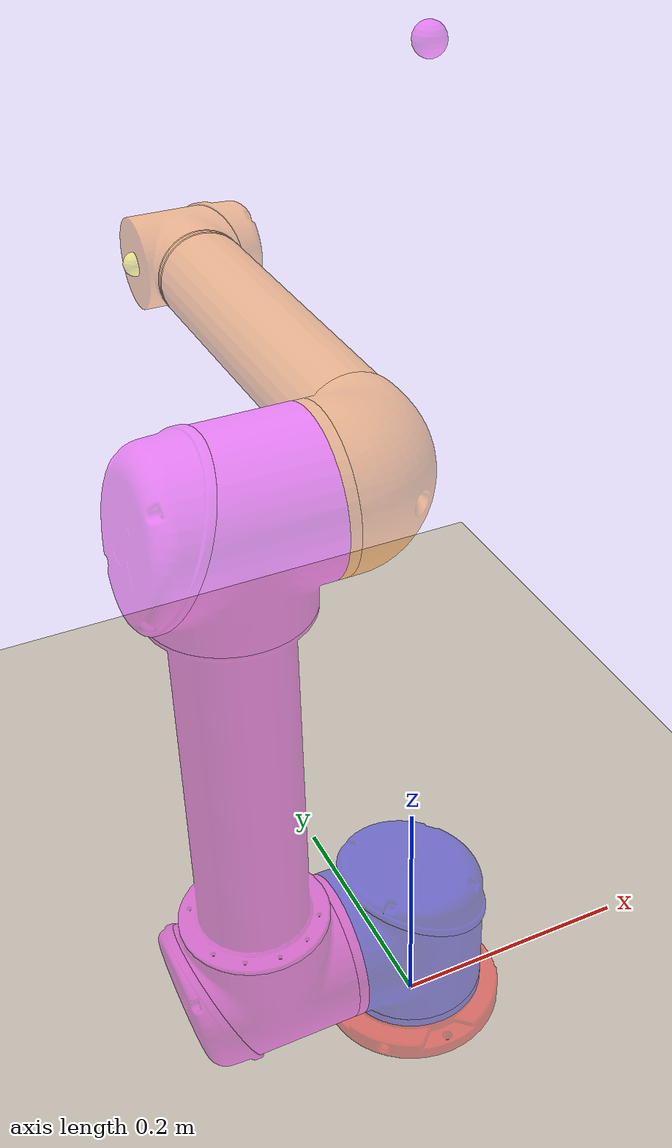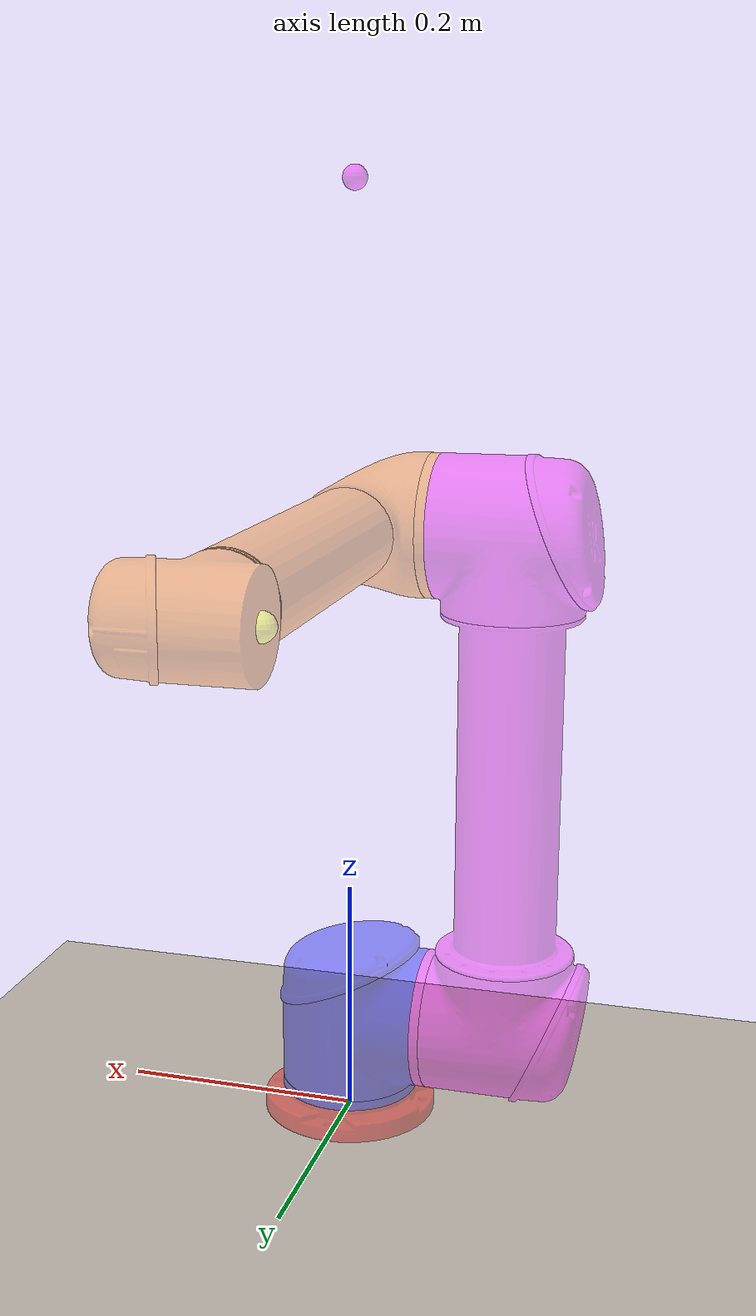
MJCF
<!-- NOTE: the joint limits and references have not been set. If using -->
<!-- this to control a real ur5, make sure they align with the values -->
<!-- used in the real arm firmware -->
<!-- Masses and center-of-masses taken from: www.universal-robots.com/
        how-tos-and-faqs/faq/ur-faq/
        parameters-for-calculations-of-kinematics-and-dynamics-45257/ -->
<!-- Principle moments of inertia not provided, set all to 0.1. -->
<!-- Inertia parameters provided at link below, not sure of accuracy so not used:
        http://hades.mech.northwestern.edu/images/4/49/UR5-URDF.pdf -->
<mujoco model="ur5">
    <compiler angle="radian" meshdir="meshes" balanceinertia="true"/>

    <default>
        <light castshadow="false" diffuse="1 1 1" />
        <camera fovy="60" />
    </default>

    <asset>
        <!-- arm models -->
        <mesh file="link0.stl"/>
        <mesh file="link1.stl"/>
        <mesh file="link1_cap.stl" />
        <mesh file="link1_connector.stl" />
        <mesh file="link2.stl" />
        <mesh file="link2_tube.stl" />
        <mesh file="link2_cap.stl" />
        <mesh file="link2_connector.stl" />
        <mesh file="link3a.stl" />
        <mesh file="link3a_connector.stl" />
        <mesh file="link3_tube.stl" />
        <mesh file="link3_cap.stl" />
        <mesh file="link3b.stl" />
        <mesh file="link3b_connector.stl" />
        <mesh file="link3b_connector2.stl"/>

        <material name="GriMat" specular="0.9" shininess="0.5" reflectance="0" rgba="0.1 0.1 0.1 1" emission="0.1" />

        <texture name="floor_tile" file="meshes/floor_tile.png" width="3000" height="3000" type="2d"/>
        <material name="tile"   texture="floor_tile" specular="0" shininess="0" reflectance="0" emission="1" />

        <material name="silver" specular="1" shininess="0.5" reflectance="1" emission="0.25" rgba="0.82 0.82 0.82 1"/>
        <material name="grey"   specular="1" shininess="0.5" reflectance="1" emission="0.1"  rgba="0.5 0.5 0.5 1"/>
        <material name="blue"   specular="1" shininess="0.5" reflectance="1" emission="0"    rgba="0.678 0.847 0.902 1"/>
        <material name="black"  specular="1" shininess="0.5" reflectance="1" emission="0"    rgba="0.2 0.2 0.2 1"/>

       	<material name="red"  specular="1" shininess="0.5" reflectance="1" emission="0"    rgba="1 0 0 0.4"/>
        <material name="green"  specular="1" shininess="0.5" reflectance="1" emission="0"    rgba="0 0 1 0.4"/>
        <material name="purple"  specular="1" shininess="0.5" reflectance="1" emission="0"    rgba="1 0 1 0.4"/>
        <material name="orange"  specular="1" shininess="0.5" reflectance="1" emission="0"    rgba="1 0.5 0 0.4"/>
        <material name="yellow"  specular="1" shininess="0.5" reflectance="1" emission="0"    rgba="1 1 0 0.4"/>

    </asset>

    <worldbody>
        <geom name="floor_grey_tile" pos="0 0.4 -0.001" size="1.0 1.0 0.05" type="plane" solimp="1 1 0 0.5 2" friction="0.1 0.005 0.0001" material="tile"/>

        <!-- light -->
        <light directional="true" pos="-0.5 0.5 3" dir="0 0 -1" />

        <!-- camera -->
        <camera name="camera1" mode= "fixed" euler="0 1.57 1.57" pos="1.0 0 0.3"/>
        <camera name="camera2" mode= "fixed" euler="-0.7 0 3.141592653589793" pos="0 1.2 1.2"/>
        <camera name="camera3" mode= "fixed" euler="0 0 3.141592653589793" pos="0 0.18 1.4"/>

        <body name="base_link" pos="0 0 0">
        	<geom name="link0_base"    type="sphere" size="0.01"  pos="0 0 0"                 material="yellow" conaffinity="32" contype="32"/>
        	<geom name="calc_point"    type="sphere" size="0.01"  pos=" 0.         -0.01023551  0.78154784" material="purple" conaffinity="16" contype="16"/>

            <geom name="link0" type="mesh" mesh="link0" pos="0 0 0" material="red"/>
            <!-- frictionloss="20"  damping="30" limited="true" range accesesable -->
            <body name="link1" pos="0 0 0.0213">
            	<geom name="link1_base"    type="sphere" size="0.01"  pos="0 0 0"                 material="yellow" conaffinity="32" contype="32"/>
                <joint name="joint0" type="hinge" axis="0 0 1" pos="0 0 0" frictionloss="20"  damping="30" limited="true" range="-0.7853981633974483 0.7853981633974483"/>
                <inertial pos="0 -0.02561 0.00193" mass="3.761" diaginertia="0.1 0.1 0.1"/>
                <geom name="link1_connector"    type="mesh" mesh="link1_connector"  pos="0 0 0"         material="green" conaffinity="32" contype="32"/>
                <geom name="link1"              type="mesh" mesh="link1"            pos="0 0 0.008"     material="green"/>
                <geom name="link1_cap"          type="mesh" mesh="link1_cap"        pos="0 0 .1025"     material="green"/>

                <body name="link2" pos="-0.0663 0 0.0679">
                	<geom name="link2_base"    type="sphere" size="0.01"  pos="0 0 0"                 material="yellow" conaffinity="32" contype="32"/>
                    <joint name="joint1" type="hinge" axis="-1 0 0" pos="0 0 0" frictionloss="20"  damping="30" limited="true" range="-0.7853981633974483 0.7853981633974483"/>
                    <inertial pos="-0.04706 0 0.2125" mass="8.058" diaginertia="0.1 0.1 0.1"/>
                    <geom name="link2_connector" type="mesh" mesh="link2_connector" pos="0 0 0"             material="purple" conaffinity="32" contype="32"/>
                    <geom name="link2"           type="mesh" mesh="link2"           pos="-0.008 0 0"        material="purple"/>
                    <geom name="link2_cap"       type="mesh" mesh="link2_cap"       pos="-0.1015 0 -0.0025" material="purple"/>
                    <geom name="link2_tube"      type="mesh" mesh="link2_tube"      pos="-0.0679 0 0.066"   material="purple"/>

                    <body name="link3" pos="-0.008 0 0.425" quat="0.707107 -0.707107 0 0">
                    	<geom name="link3_base"    type="sphere" size="0.01"  pos="0 0 0"                 material="yellow" conaffinity="32" contype="32"/>
                        <joint name="joint2" type="hinge" axis="1 0 0" pos="0 0 0" frictionloss="20"  damping="30" limited="true" range="-0.7853981633974483 0.7853981633974483"/>
                        <inertial pos="0.0478 0 0.15" mass="2.846" diaginertia="0.1 0.1 0.1"/>
                        <geom name="link3a_connector"   type="mesh" mesh="link3a_connector"     pos="0 0 0"             material="orange" conaffinity="32" contype="32"/>
                        <geom name="link3a"             type="mesh" mesh="link3a"               pos="0.008 0 0"         material="orange"/>
                        <geom name="link3_tube"         type="mesh" mesh="link3_tube"           pos="0.059 0 0.066"     material="orange"/>
                        <geom name="link3b_connector"   type="mesh" mesh="link3b_connector"     pos="0.059 0 0.3418"    material="orange" />
                        <geom name="link3b_connector2"  type="mesh" mesh="link3b_connector2"    pos="0.059 0 0.34"      material="orange" conaffinity="32" contype="32"/>
                        <geom name="link3b"             type="mesh" mesh="link3b"               pos="0.059 0 0.347"     material="orange"/>
                        <geom name="link3_cap"          type="mesh" mesh="link3_cap"            pos="0.0837 0 0.392"    material="orange"/>

                        <body name="link4" pos="0.0173 0 0.3922" quat="0.707107 0.707107 0 0">
                            <geom name="link4_base"    type="sphere" size="0.01"  pos="0 0 0"                 material="yellow" conaffinity="32" contype="32"/>
                        </body>
                    </body>
                </body>
            </body>
        </body>
    </worldbody>

    <actuator>
        <general name="joint0_actuator"  joint="joint0"        ctrllimited="true" forcelimited="true" ctrlrange="-0.7853981633974483 0.7853981633974483" forcerange="-300 300" biastype="affine" gainprm="300 0 0" biasprm="0 -300 0" />
        <general name="joint1_actuator"  joint="joint1"        ctrllimited="true" forcelimited="true" ctrlrange="-0.7853981633974483 0.7853981633974483" forcerange="-300 300" biastype="affine" gainprm="300 0 0" biasprm="0 -300 0" />
        <general name="joint2_actuator"  joint="joint2"        ctrllimited="true" forcelimited="true" ctrlrange="-0.7853981633974483 0.7853981633974483" forcerange="-300 300" biastype="affine" gainprm="300 0 0" biasprm="0 -300 0" />
    </actuator>

</mujoco>
